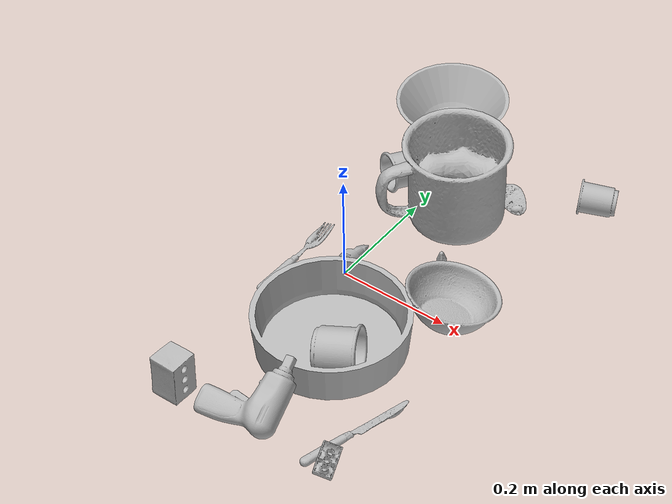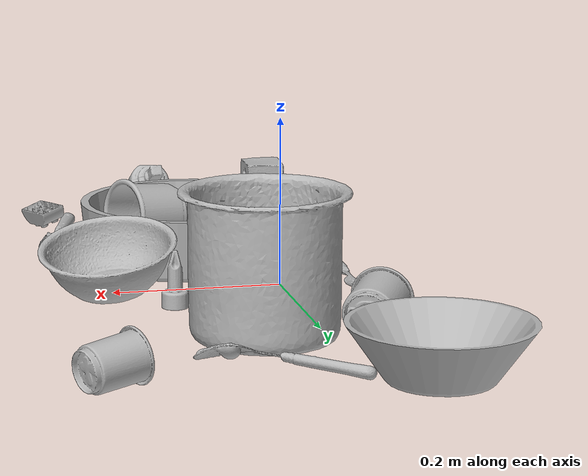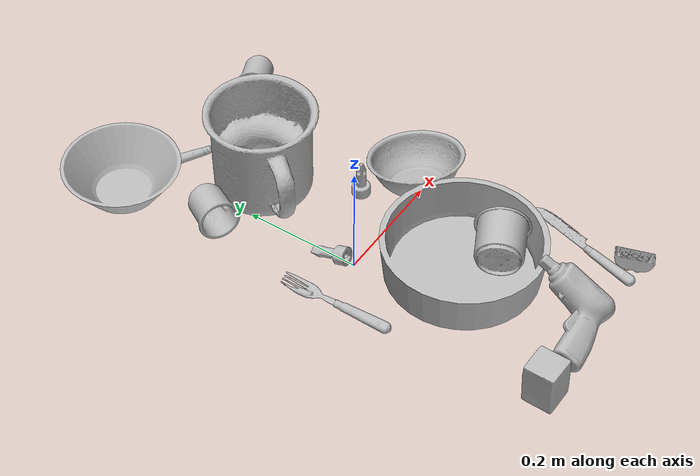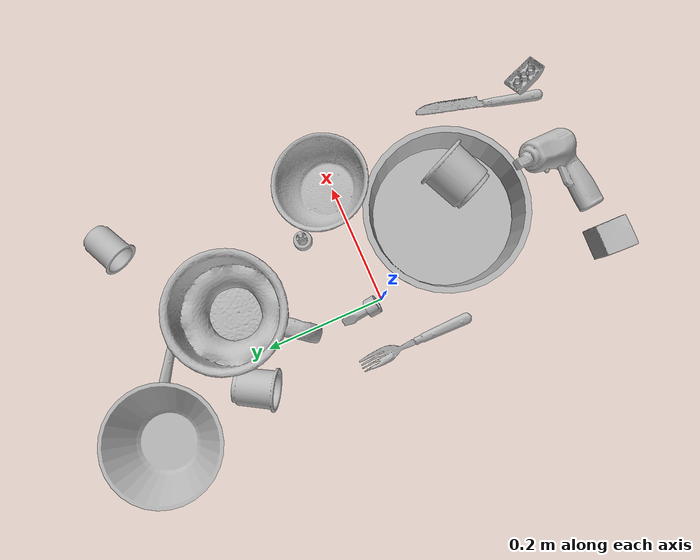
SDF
<sdf version="1.4">
  <world name="default">
    <light name="light1" type="point">
      <pose>0 0 1 0 0 0</pose>
      <diffuse>3 3 3 1</diffuse>
      <specular>3 3 3 1</specular>
    </light>
    <light name="light2" type="point">
      <pose>0 0.5 2 0 0 0</pose>
      <diffuse>1 1 1 1</diffuse>
      <specular>1 1 1 1</specular>
    </light>
    <light name="light3" type="point">
      <pose>0 0.5 2 0 0 0</pose>
      <diffuse>3 3 3 1</diffuse>
      <specular>3 3 3 1</specular>
    </light>
    <scene>
      <ambient>0.7 0.7 0.7</ambient>
    </scene>
    <model name="plate1">
      <link name="link_plate1">
        <collision name="default">
          <geometry>
            <mesh>
              <uri>model://pan_tefal/collision_meshes/collision.obj</uri>
              <scale>1.0 1.0 1.0</scale>
            </mesh>
          </geometry>
          <surface>
            <friction>
              <ode>
                <mu>0.5</mu>
                <mu2>0.5</mu2>
              </ode>
            </friction>
          <contact>
        <ode>
            <max_vel>0</max_vel>
            <min_depth>0.0001</min_depth>
            <kp>1e8</kp>
        </ode>
    </contact></surface>
        </collision>
        <visual name="default">
          <geometry>
            <mesh>
              <uri>model://pan_tefal/visual_meshes/visual.dae</uri>
              <scale>1.0 1.0 1.0</scale>
            </mesh>
          </geometry>
        </visual>
        <inertial>
          <mass>1.356081485748291</mass>
          <pose>-0.00018001878925133497 3.2792810088722035e-05 -0.008514934219419956 0.000819032333381865 -0.0003301471985614655 -0.33185384828338066</pose>
          <inertia>
            <ixx>0.009360965</ixx>
            <iyy>0.009421317</iyy>
            <izz>0.017231734</izz>
            <ixy>0</ixy>
            <ixz>0</ixz>
            <iyz>0</iyz>
          </inertia>
        </inertial>
      </link>
      <pose>0.08481951802968979 -0.14734788239002228 0.03804998844861984 -1.3268498538422264e-07 -8.700966832320646e-08 1.726957173546552</pose>
    </model>
    <model name="cup1">
      <link name="link_cup1">
        <collision name="default">
          <geometry>
            <mesh>
              <uri>model://mug/collision_meshes/collision.obj</uri>
              <scale>2.0 2.0 2.0</scale>
            </mesh>
          </geometry>
          <surface>
            <friction>
              <ode>
                <mu>0.5</mu>
                <mu2>0.5</mu2>
              </ode>
            </friction>
          <contact>
        <ode>
            <max_vel>0</max_vel>
            <min_depth>0.0001</min_depth>
            <kp>1e8</kp>
        </ode>
    </contact></surface>
        </collision>
        <visual name="default">
          <geometry>
            <mesh>
              <uri>model://mug/visual_meshes/visual.dae</uri>
              <scale>2.0 2.0 2.0</scale>
            </mesh>
          </geometry>
        </visual>
        <inertial>
          <mass>1.425228476524353</mass>
          <pose>0.019143342971801758 0.0016286519821733236 -0.021894657984375954 -0.12983169455958588 0.08737743422724535 0.05507285753370488</pose>
          <inertia>
            <ixx>0.005662833</ixx>
            <iyy>0.0063250507</iyy>
            <izz>0.0073150056</izz>
            <ixy>0</ixy>
            <ixz>0</ixz>
            <iyz>0</iyz>
          </inertia>
        </inertial>
      </link>
      <pose>0.05419764295220375 0.20395949482917786 0.0818987786769867 -5.175648158487154e-05 0.0001756819896239342 0.9078767089578386</pose>
    </model>
    <model name="silverware1">
      <link name="link_silverware1">
        <collision name="default">
          <geometry>
            <mesh>
              <uri>model://spoon/collision_meshes/collision.obj</uri>
              <scale>1.0 1.0 1.0</scale>
            </mesh>
          </geometry>
          <surface>
            <friction>
              <ode>
                <mu>0.5</mu>
                <mu2>0.5</mu2>
              </ode>
            </friction>
          <contact>
        <ode>
            <max_vel>0</max_vel>
            <min_depth>0.0001</min_depth>
            <kp>1e8</kp>
        </ode>
    </contact></surface>
        </collision>
        <visual name="default">
          <geometry>
            <mesh>
              <uri>model://spoon/visual_meshes/visual.dae</uri>
              <scale>1.0 1.0 1.0</scale>
            </mesh>
          </geometry>
        </visual>
        <inertial>
          <mass>0.031423501670360565</mass>
          <pose>-0.005526318680495024 -0.0016034176805987954 -0.000727165665011853 0.035217765619004186 -0.03906586018731898 0.006150610672177042</pose>
          <inertia>
            <ixx>1.7478262e-06</ixx>
            <iyy>0.0001195654</iyy>
            <izz>0.000120427336</izz>
            <ixy>0</ixy>
            <ixz>0</ixz>
            <iyz>0</iyz>
          </inertia>
        </inertial>
      </link>
      <pose>0.072416290640831 0.33847862482070923 0.01020167488604784 -2.7145897751792543 -0.061759632667856335 -0.6023337783259212</pose>
    </model>
    <model name="silverware2">
      <link name="link_silverware2">
        <collision name="default">
          <geometry>
            <mesh>
              <uri>model://fork/collision_meshes/collision.obj</uri>
              <scale>1.0 1.0 1.0</scale>
            </mesh>
          </geometry>
          <surface>
            <friction>
              <ode>
                <mu>0.5</mu>
                <mu2>0.5</mu2>
              </ode>
            </friction>
          <contact>
        <ode>
            <max_vel>0</max_vel>
            <min_depth>0.0001</min_depth>
            <kp>1e8</kp>
        </ode>
    </contact></surface>
        </collision>
        <visual name="default">
          <geometry>
            <mesh>
              <uri>model://fork/visual_meshes/visual.dae</uri>
              <scale>1.0 1.0 1.0</scale>
            </mesh>
          </geometry>
        </visual>
        <inertial>
          <mass>0.02368462271988392</mass>
          <pose>-0.02957003191113472 0.00046588238910771906 0.00032188621116802096 -0.013550757689210725 -0.010977831639922976 0.014453892765665301</pose>
          <inertia>
            <ixx>8.3028004e-07</ixx>
            <iyy>6.183376e-05</iyy>
            <izz>6.220513e-05</izz>
            <ixy>0</ixy>
            <ixz>0</ixz>
            <iyz>0</iyz>
          </inertia>
        </inertial>
      </link>
      <pose>-0.08485105633735657 -0.023839397355914116 0.005689777433872223 -0.17733259363663997 0.025332755585779597 1.5745287812619218</pose>
    </model>
    <model name="silverware3">
      <link name="link_silverware3">
        <collision name="default">
          <geometry>
            <mesh>
              <uri>model://knife/collision_meshes/collision.obj</uri>
              <scale>1.0 1.0 1.0</scale>
            </mesh>
          </geometry>
          <surface>
            <friction>
              <ode>
                <mu>0.5</mu>
                <mu2>0.5</mu2>
              </ode>
            </friction>
          <contact>
        <ode>
            <max_vel>0</max_vel>
            <min_depth>0.0001</min_depth>
            <kp>1e8</kp>
        </ode>
    </contact></surface>
        </collision>
        <visual name="default">
          <geometry>
            <mesh>
              <uri>model://knife/visual_meshes/visual.dae</uri>
              <scale>1.0 1.0 1.0</scale>
            </mesh>
          </geometry>
        </visual>
        <inertial>
          <mass>0.023530498147010803</mass>
          <pose>-0.023785250261425972 0.0015275124460458755 5.062020863988437e-05 0.07305757972864607 0.01724841573343299 -0.007409825279630946</pose>
          <inertia>
            <ixx>6.678909e-07</ixx>
            <iyy>9.040038e-05</iyy>
            <izz>9.0615475e-05</izz>
            <ixy>0</ixy>
            <ixz>0</ixz>
            <iyz>0</iyz>
          </inertia>
        </inertial>
      </link>
      <pose>0.2351837158203125 -0.28280338644981384 0.008136888034641743 -0.28100854743404485 -0.008889212860567403 1.2971875828173212</pose>
    </model>
    <model name="cup3">
      <link name="link_cup3">
        <collision name="default">
          <geometry>
            <mesh>
              <uri>model://b_cups/collision_meshes/collision.obj</uri>
              <scale>1.0 1.0 1.0</scale>
            </mesh>
          </geometry>
          <surface>
            <friction>
              <ode>
                <mu>0.5</mu>
                <mu2>0.5</mu2>
              </ode>
            </friction>
          <contact>
        <ode>
            <max_vel>0</max_vel>
            <min_depth>0.0001</min_depth>
            <kp>1e8</kp>
        </ode>
    </contact></surface>
        </collision>
        <visual name="default">
          <geometry>
            <mesh>
              <uri>model://b_cups/visual_meshes/visual.dae</uri>
              <scale>1.0 1.0 1.0</scale>
            </mesh>
          </geometry>
        </visual>
        <inertial>
          <mass>0.033049143850803375</mass>
          <pose>0.0005182002205401659 0.001805859967134893 -0.0013381808530539274 0.11356265792291019 0.03872585472979472 -0.3457023826899558</pose>
          <inertia>
            <ixx>2.1632983e-05</ixx>
            <iyy>2.1222275e-05</iyy>
            <izz>1.8203747e-05</izz>
            <ixy>0</ixy>
            <ixz>0</ixz>
            <iyz>0</iyz>
          </inertia>
        </inertial>
      </link>
      <pose>0.25420457124710083 0.37264227867126465 0.02773759886622429 -1.4784444830489325 -0.07343656401984769 2.0156048607893453</pose>
    </model>
    <model name="cup4">
      <link name="link_cup4">
        <collision name="default">
          <geometry>
            <mesh>
              <uri>model://h_cups/collision_meshes/collision.obj</uri>
              <scale>1.0 1.0 1.0</scale>
            </mesh>
          </geometry>
          <surface>
            <friction>
              <ode>
                <mu>0.5</mu>
                <mu2>0.5</mu2>
              </ode>
            </friction>
          <contact>
        <ode>
            <max_vel>0</max_vel>
            <min_depth>0.0001</min_depth>
            <kp>1e8</kp>
        </ode>
    </contact></surface>
        </collision>
        <visual name="default">
          <geometry>
            <mesh>
              <uri>model://h_cups/visual_meshes/visual.dae</uri>
              <scale>1.0 1.0 1.0</scale>
            </mesh>
          </geometry>
        </visual>
        <inertial>
          <mass>0.11347958445549011</mass>
          <pose>-2.7030910132452846e-05 0.00023018615320324898 -0.0018405403243377805 -0.02436217983877791 0.06545222634893223 0.12885210457354207</pose>
          <inertia>
            <ixx>0.0001465536</ixx>
            <iyy>0.00014480477</iyy>
            <izz>0.00015369456</izz>
            <ixy>0</ixy>
            <ixz>0</ixz>
            <iyz>0</iyz>
          </inertia>
        </inertial>
      </link>
      <pose>0.12925389409065247 -0.18807022273540497 0.04970211535692215 1.4573043044041483 -0.48673718194517673 2.0553654482834967</pose>
    </model>
    <model name="cup5">
      <link name="link_cup5">
        <collision name="default">
          <geometry>
            <mesh>
              <uri>model://d_cups/collision_meshes/collision.obj</uri>
              <scale>1.0 1.0 1.0</scale>
            </mesh>
          </geometry>
          <surface>
            <friction>
              <ode>
                <mu>0.5</mu>
                <mu2>0.5</mu2>
              </ode>
            </friction>
          <contact>
        <ode>
            <max_vel>0</max_vel>
            <min_depth>0.0001</min_depth>
            <kp>1e8</kp>
        </ode>
    </contact></surface>
        </collision>
        <visual name="default">
          <geometry>
            <mesh>
              <uri>model://d_cups/visual_meshes/visual.dae</uri>
              <scale>1.0 1.0 1.0</scale>
            </mesh>
          </geometry>
        </visual>
        <inertial>
          <mass>0.039110079407691956</mass>
          <pose>0.0008068050956353545 0.0019117392366752028 -0.0022666517179459333 0.24011224021147495 -0.247107611945545 0.594295747375292</pose>
          <inertia>
            <ixx>3.2744327e-05</ixx>
            <iyy>3.2649565e-05</iyy>
            <izz>2.9639183e-05</izz>
            <ixy>0</ixy>
            <ixz>0</ixz>
            <iyz>0</iyz>
          </inertia>
        </inertial>
      </link>
      <pose>-0.04973211511969566 0.24072372913360596 0.032503727823495865 1.4672206473263631 0.49125766207566285 -0.5668053382140235</pose>
    </model>
    <model name="bowl1">
      <link name="link_bowl1">
        <collision name="default">
          <geometry>
            <mesh>
              <uri>model://bowl/collision_meshes/collision.obj</uri>
              <scale>1.0 1.0 1.0</scale>
            </mesh>
          </geometry>
          <surface>
            <friction>
              <ode>
                <mu>0.5</mu>
                <mu2>0.5</mu2>
              </ode>
            </friction>
          <contact>
        <ode>
            <max_vel>0</max_vel>
            <min_depth>0.0001</min_depth>
            <kp>1e8</kp>
        </ode>
    </contact></surface>
        </collision>
        <visual name="default">
          <geometry>
            <mesh>
              <uri>model://bowl/visual_meshes/visual.dae</uri>
              <scale>1.0 1.0 1.0</scale>
            </mesh>
          </geometry>
        </visual>
        <inertial>
          <mass>0.04740063101053238</mass>
          <pose>0.00020445372501853853 -0.001030205050483346 -0.000804265437182039 -0.015764138065403298 0.014546740803255881 0.7140373892972721</pose>
          <inertia>
            <ixx>0.00010888298</ixx>
            <iyy>0.000106450105</iyy>
            <izz>0.00018317858</izz>
            <ixy>0</ixy>
            <ixz>0</ixz>
            <iyz>0</iyz>
          </inertia>
        </inertial>
      </link>
      <pose>0.204959899187088 0.013281767256557941 0.03697551414370537 0.0996782902594103 0.2089898691725317 1.4301201858953811</pose>
    </model>
    <model name="bowl2">
      <link name="link_bowl2">
        <collision name="default">
          <geometry>
            <mesh>
              <uri>model://bowl_a/collision_meshes/collision.obj</uri>
              <scale>1.0 1.0 1.0</scale>
            </mesh>
          </geometry>
          <surface>
            <friction>
              <ode>
                <mu>0.5</mu>
                <mu2>0.5</mu2>
              </ode>
            </friction>
          <contact>
        <ode>
            <max_vel>0</max_vel>
            <min_depth>0.0001</min_depth>
            <kp>1e8</kp>
        </ode>
    </contact></surface>
        </collision>
        <visual name="default">
          <geometry>
            <mesh>
              <uri>model://bowl_a/visual_meshes/visual.dae</uri>
              <scale>1.0 1.0 1.0</scale>
            </mesh>
          </geometry>
        </visual>
        <inertial>
          <mass>0.4596928358078003</mass>
          <pose>0.0002786756376735866 4.731212538899854e-05 -0.001376529224216938 -0.0009805332698969178 -0.0010938264579112213 -0.1912378887702168</pose>
          <inertia>
            <ixx>0.0013087663</ixx>
            <iyy>0.0013168014</iyy>
            <izz>0.002327691</izz>
            <ixy>0</ixy>
            <ixz>0</ixz>
            <iyz>0</iyz>
          </inertia>
        </inertial>
      </link>
      <pose>-0.07176534831523895 0.40706291794776917 0.03038301318883896 -1.8691741395838354e-06 -1.7027773601320262e-06 1.6486577163029488</pose>
    </model>
    <model name="toy1">
      <link name="link_toy1">
        <collision name="default">
          <geometry>
            <mesh>
              <uri>model://d_toy_airplane/collision_meshes/collision.obj</uri>
              <scale>1.0 1.0 1.0</scale>
            </mesh>
          </geometry>
          <surface>
            <friction>
              <ode>
                <mu>0.5</mu>
                <mu2>0.5</mu2>
              </ode>
            </friction>
          <contact>
        <ode>
            <max_vel>0</max_vel>
            <min_depth>0.0001</min_depth>
            <kp>1e8</kp>
        </ode>
    </contact></surface>
        </collision>
        <visual name="default">
          <geometry>
            <mesh>
              <uri>model://d_toy_airplane/visual_meshes/visual.dae</uri>
              <scale>1.0 1.0 1.0</scale>
            </mesh>
          </geometry>
        </visual>
        <inertial>
          <mass>0.017302583903074265</mass>
          <pose>9.410295751877129e-05 -5.809326466987841e-05 -0.011728093028068542 0.00026573120399734447 0.004679044314999465 0.5192011935173154</pose>
          <inertia>
            <ixx>5.1869783e-06</ixx>
            <iyy>5.190892e-06</iyy>
            <izz>1.5659823e-06</izz>
            <ixy>0</ixy>
            <ixz>0</ixz>
            <iyz>0</iyz>
          </inertia>
        </inertial>
      </link>
      <pose>0.13998733460903168 0.07918108999729156 0.03333878144621849 -3.779973151125571e-05 -0.00017289950450228363 3.0297807185771375</pose>
    </model>
    <model name="toy2">
      <link name="link_toy2">
        <collision name="default">
          <geometry>
            <mesh>
              <uri>model://b_toy_airplane/collision_meshes/collision.obj</uri>
              <scale>1.0 1.0 1.0</scale>
            </mesh>
          </geometry>
          <surface>
            <friction>
              <ode>
                <mu>0.5</mu>
                <mu2>0.5</mu2>
              </ode>
            </friction>
          <contact>
        <ode>
            <max_vel>0</max_vel>
            <min_depth>0.0001</min_depth>
            <kp>1e8</kp>
        </ode>
    </contact></surface>
        </collision>
        <visual name="default">
          <geometry>
            <mesh>
              <uri>model://b_toy_airplane/visual_meshes/visual.dae</uri>
              <scale>1.0 1.0 1.0</scale>
            </mesh>
          </geometry>
        </visual>
        <inertial>
          <mass>0.45341360569000244</mass>
          <pose>0.00508136535063386 0.004015584941953421 0.00954306498169899 -0.04001809497736226 -0.04022180630889015 -0.560150289687741</pose>
          <inertia>
            <ixx>0.0008417707</ixx>
            <iyy>0.00033646397</iyy>
            <izz>0.0010472467</izz>
            <ixy>0</ixy>
            <ixz>0</ixz>
            <iyz>0</iyz>
          </inertia>
        </inertial>
      </link>
      <pose>0.08366109430789948 -0.36018750071525574 0.044174160808324814 3.1291455477195926 -0.5949711312241651 1.6803480378362394</pose>
    </model>
    <model name="toy3">
      <link name="link_toy3">
        <collision name="default">
          <geometry>
            <mesh>
              <uri>model://a_lego_duplo/collision_meshes/collision.obj</uri>
              <scale>1.0 1.0 1.0</scale>
            </mesh>
          </geometry>
          <surface>
            <friction>
              <ode>
                <mu>0.5</mu>
                <mu2>0.5</mu2>
              </ode>
            </friction>
          <contact>
        <ode>
            <max_vel>0</max_vel>
            <min_depth>0.0001</min_depth>
            <kp>1e8</kp>
        </ode>
    </contact></surface>
        </collision>
        <visual name="default">
          <geometry>
            <mesh>
              <uri>model://a_lego_duplo/visual_meshes/visual.dae</uri>
              <scale>1.0 1.0 1.0</scale>
            </mesh>
          </geometry>
        </visual>
        <inertial>
          <mass>0.019445955753326416</mass>
          <pose>-0.00011337668547639623 0.0001851754350354895 0.00036926064058206975 -0.014116968054253443 -0.00012565964371363686 6.142473690124929e-05</pose>
          <inertia>
            <ixx>2.4931269e-06</ixx>
            <iyy>5.58515e-06</iyy>
            <izz>6.9184516e-06</izz>
            <ixy>0</ixy>
            <ixz>0</ixz>
            <iyz>0</iyz>
          </inertia>
        </inertial>
      </link>
      <pose>0.24052760004997253 -0.36669445037841797 0.015521385706961155 -2.844609813243891 -0.06821972023487853 1.9404869215297222</pose>
    </model>
    <model name="toy4">
      <link name="link_toy4">
        <collision name="default">
          <geometry>
            <mesh>
              <uri>model://foam_brick/collision_meshes/collision.obj</uri>
              <scale>1.0 1.0 1.0</scale>
            </mesh>
          </geometry>
          <surface>
            <friction>
              <ode>
                <mu>0.5</mu>
                <mu2>0.5</mu2>
              </ode>
            </friction>
          <contact>
        <ode>
            <max_vel>0</max_vel>
            <min_depth>0.0001</min_depth>
            <kp>1e8</kp>
        </ode>
    </contact></surface>
        </collision>
        <visual name="default">
          <geometry>
            <mesh>
              <uri>model://foam_brick/visual_meshes/visual.dae</uri>
              <scale>1.0 1.0 1.0</scale>
            </mesh>
          </geometry>
        </visual>
        <inertial>
          <mass>0.18476375937461853</mass>
          <pose>-0.00025224717683158815 0.0003458433784544468 -0.00025321010616607964 -0.2940193708875024 0.01727444338713918 -0.0007449870082442464</pose>
          <inertia>
            <ixx>8.070827e-05</ixx>
            <iyy>0.00012885487</iyy>
            <izz>0.00013049248</izz>
            <ixy>0</ixy>
            <ixz>0</ixz>
            <iyz>0</iyz>
          </inertia>
        </inertial>
      </link>
      <pose>-0.05862431973218918 -0.3731303811073303 0.038688305765390396 0.6299776684192543 -1.5355779337777233 2.489330347706866</pose>
    </model>
    <model name="toy5">
      <link name="link_toy5">
        <collision name="default">
          <geometry>
            <mesh>
              <uri>model://e_toy_airplane/collision_meshes/collision.obj</uri>
              <scale>1.0 1.0 1.0</scale>
            </mesh>
          </geometry>
          <surface>
            <friction>
              <ode>
                <mu>0.5</mu>
                <mu2>0.5</mu2>
              </ode>
            </friction>
          <contact>
        <ode>
            <max_vel>0</max_vel>
            <min_depth>0.0001</min_depth>
            <kp>1e8</kp>
        </ode>
    </contact></surface>
        </collision>
        <visual name="default">
          <geometry>
            <mesh>
              <uri>model://e_toy_airplane/visual_meshes/visual.dae</uri>
              <scale>1.0 1.0 1.0</scale>
            </mesh>
          </geometry>
        </visual>
        <inertial>
          <mass>0.01085815578699112</mass>
          <pose>0.00011740455374820158 -2.248299279017374e-05 -0.011187206953763962 0.005518501127689679 0.009228289957601814 0.15041514141603637</pose>
          <inertia>
            <ixx>3.3140323e-06</ixx>
            <iyy>3.2801318e-06</iyy>
            <izz>9.959974e-07</izz>
            <ixy>0</ixy>
            <ixz>0</ixz>
            <iyz>0</iyz>
          </inertia>
        </inertial>
      </link>
      <pose>-0.007434644270688295 0.04149993136525154 0.010808711871504784 -2.1451740327201896 1.1028209229029566 -0.4215222650320852</pose>
    </model>
  <physics type="ode">
      <max_contacts>50</max_contacts>
      <ode>
        <solver>
          <type>quick</type>
          <iters>75</iters>
        </solver>
        <constraints>
          <contact_max_correcting_vel>0</contact_max_correcting_vel>
          <contact_surface_layer>0</contact_surface_layer>
        </constraints>
      </ode>
    </physics></world>
</sdf>
